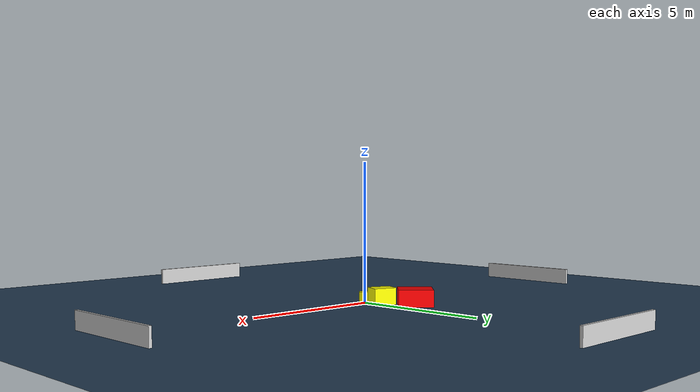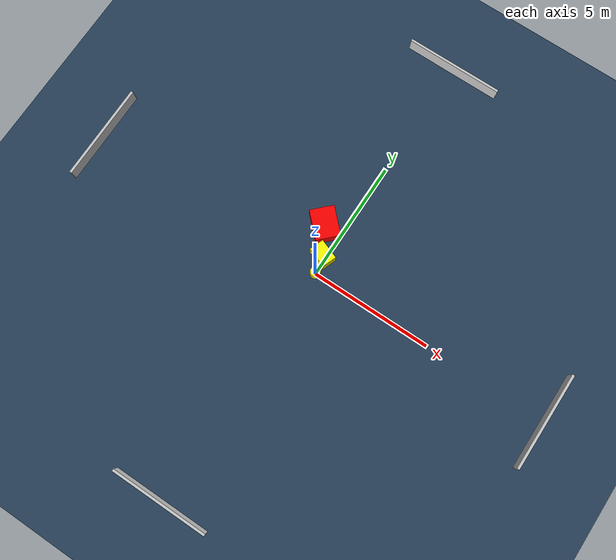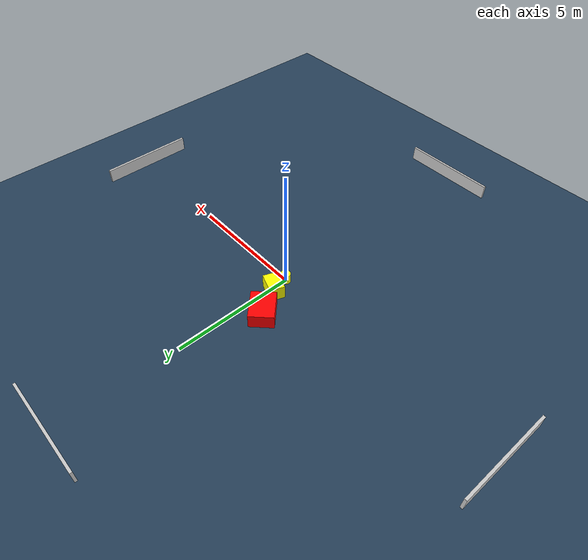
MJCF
<?xml version="1.0" ?>
<mujoco model="generated_environment">
  <option timestep="0.01" integrator="RK4" cone="elliptic"/>
  <default>
    <geom density="1"/>
  </default>
  <asset>
    <texture builtin="gradient" height="3072" name="skybox" rgb1="0.3 0.5 0.7" rgb2="0 0 0" type="skybox" width="512"/>
    <texture builtin="checker" height="300" name="groundplane" rgb1="0.2 0.3 0.4" rgb2="0.1 0.2 0.3" type="2d" width="300"/>
    <material name="groundplane" reflectance="0.2" texrepeat="5 5" texture="groundplane"/>
  </asset>
  <worldbody>
    <light dir="0 0 -1" directional="true" pos="0 0 1.5"/>
    <geom condim="3" friction="0.5 0.005 0.001" material="groundplane" name="floor" pos="0 0 0" size="0 0 0.05" type="plane"/>
    <body name="walls">
      <geom name="wall_1" condim="4" pos="-10.0 0.0 0.3" rgba="0.800000011920929 0.800000011920929 0.800000011920929 1.0" size="0.05 2.0 0.3" type="box"/>
      <geom name="wall_2" condim="4" pos="10.0 0.0 0.3" rgba="0.800000011920929 0.800000011920929 0.800000011920929 1.0" size="0.05 2.0 0.3" type="box"/>
      <geom name="wall_3" condim="4" pos="0.0 -10.0 0.3" rgba="0.800000011920929 0.800000011920929 0.800000011920929 1.0" size="2.0 0.05 0.3" type="box"/>
      <geom name="wall_4" condim="4" pos="0.0 10.0 0.3" rgba="0.800000011920929 0.800000011920929 0.800000011920929 1.0" size="2.0 0.05 0.3" type="box"/>
    </body>
    <body name="robot">
      <joint name="joint_x" type="slide" pos="0 0 0" axis="1 0 0"/>
      <joint name="joint_y" type="slide" pos="0 0 0" axis="0 1 0"/>
      <geom name="robot" type="cylinder" pos="0.0 0.0 0.2" size="0.2 0.2 0.0" mass="5.0" friction="1.0 0.005 0.0001" condim="4" rgba="1.0 1.0 0.0 1.0"/>
    </body>
    <body name="obstacle_1_movable">
      <geom name="obstacle_1_movable" condim="4" pos="-0.13231037180208305 0.7209208494750045 0.3" euler="0 0 249.50516054150347" friction="0.0 0.005 0.001" rgba="1.0 1.0 0.0 1.0" size="0.29848245887391345 0.41712086416426786 0.3" type="box" mass="0.1"/>
      <joint type="free"/>
    </body>
    <body name="obstacle_2_static">
      <geom name="obstacle_2_static" condim="4" pos="-0.7245662714087804 1.7634720358350446 0.3" euler="0 0 225.28638061629997" friction="0.0 0.005 0.001" rgba="1.0 0.0 0.0 1.0" size="0.4888530185281024 0.6080772022184939 0.3" type="box"/>
    </body>
  </worldbody>
  <actuator>
    <motor name="actuator_x" joint="joint_x" gear="1" ctrlrange="-1 1"/>
    <motor name="actuator_y" joint="joint_y" gear="1" ctrlrange="-1 1"/>
  </actuator>
</mujoco>
